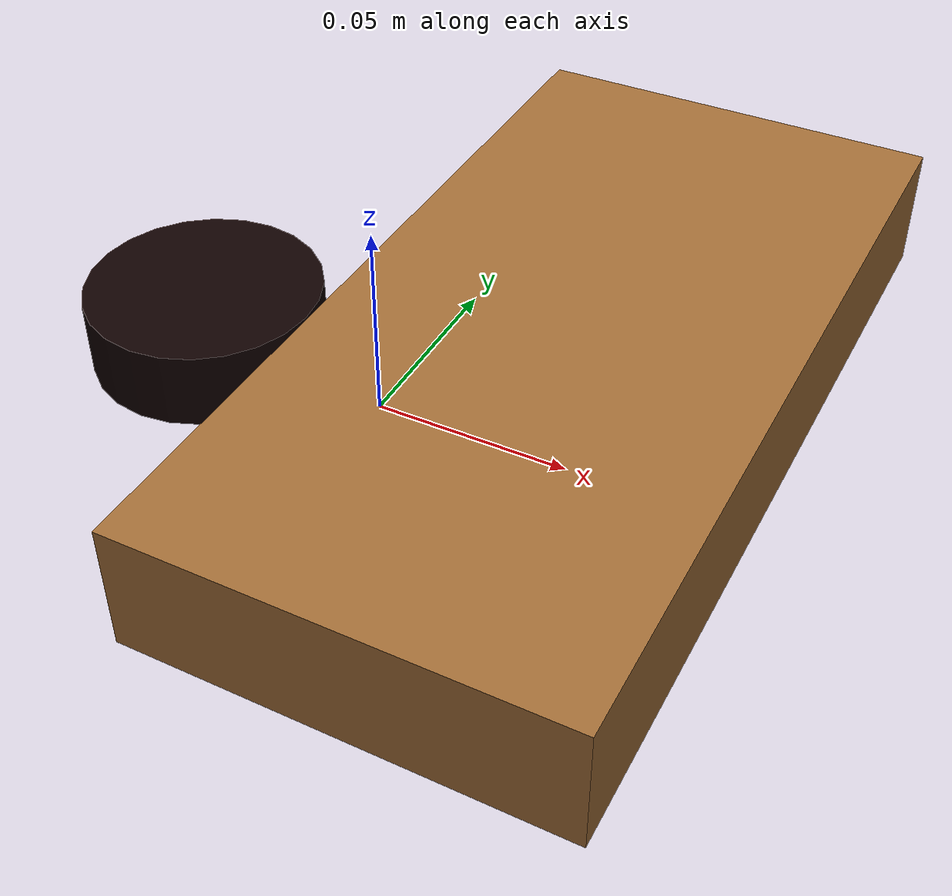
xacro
<?xml version="1.0"?>
<robot name="test">

	<link name="base_footprint"/>

	<link name="base_link">
		<visual>
			<geometry>
				<box size="0.1 0.2 0.03"/>
			</geometry>
			<material name="avana brown">
				<color rgba="0.6314 0.4275 0.2157 1"/>
			</material>
		</visual>
	</link>

	<joint name="base_joint" type="fixed">
		<parent link="base_footprint"/>
		<child link="base_link" />
		<origin xyz="0.05 0 0.03" rpy="0 0 0"/>
	</joint>

	<link name="right_wheel">
		<visual>
			<geometry>
				<cylinder length="0.02" radius="0.03"/>
			</geometry>
			<material name="black">
				<color rgba="1 0 0 1"/>
			</material>
		</visual>

	</link>

	<joint name="mio" type="fixed">
		<parent link="base_footprint"/>
		<child link="right_wheel"/>
		<origin xyz="0.05 0 0.01" rpy="1 0 0"/>
	</joint>

	<link name="left_wheel">
		<visual>
			<geometry>
				<cylinder length="0.02" radius="0.03"/>
			</geometry>
			<material name="black">
				<color rgba="15 0 0 1"/>
			</material>
		</visual>

	</link>

	<joint name="mio2" type="fixed">
		<parent link="base_footprint"/>
		<child link="left_wheel"/>
		<origin xyz="-0.05 0 0.01" rpy="0 0 0"/>
	</joint>

</robot>
